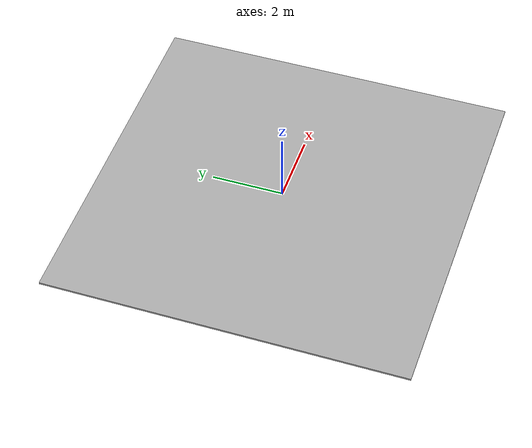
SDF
<?xml version='1.0'?>
<sdf version='1.6'>
  <model name='Floor'>
    <link name='main'>
	<pose frame=''>0 0 0.01 0 0 0</pose>
      <collision name='main_Collision'>
        <geometry>
          <box>
            <size>10 10 0.05</size>
          </box>
        </geometry>
       </collision>
      <visual name='main_Visual'>
        <geometry>
          <box>
          <size>10 10 0.05</size>
	</box>
        </geometry>
           <material>
          <script>
            <uri>model://Floor_small/materials/scripts</uri>
            <uri>model://Floor_small/materials/textures</uri>
            <name>floor</name>
          </script>
        </material>
      </visual>
     </link>
    <static>1</static>
  </model>
</sdf>
